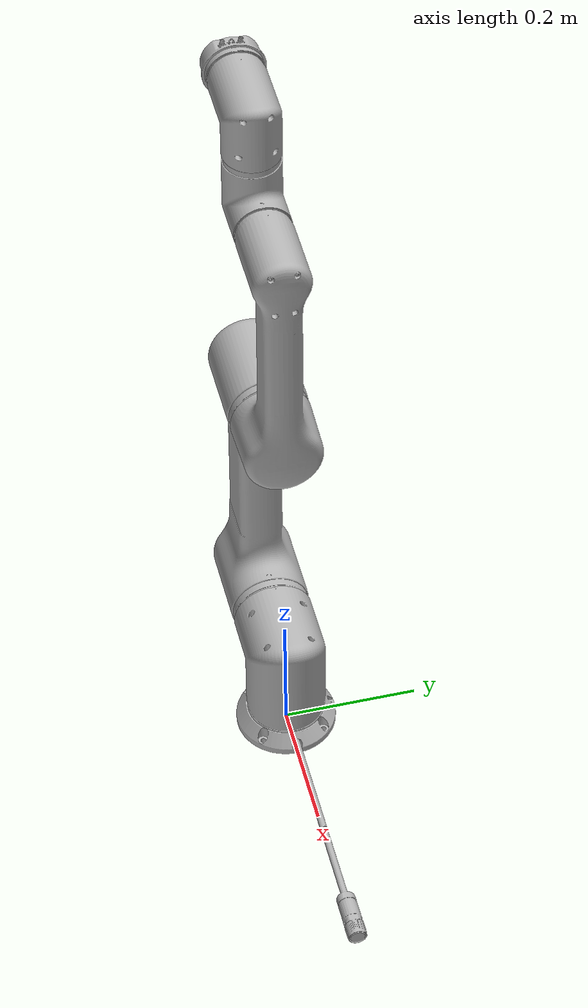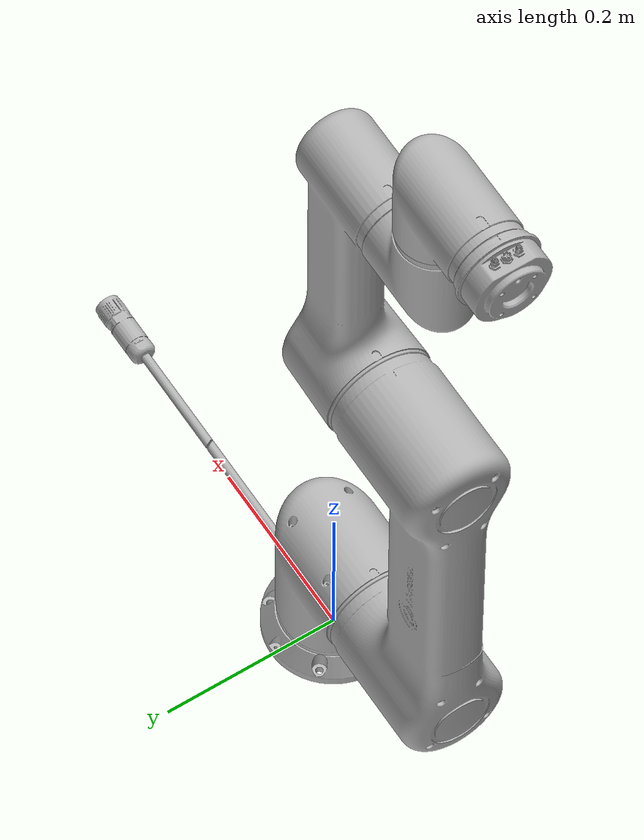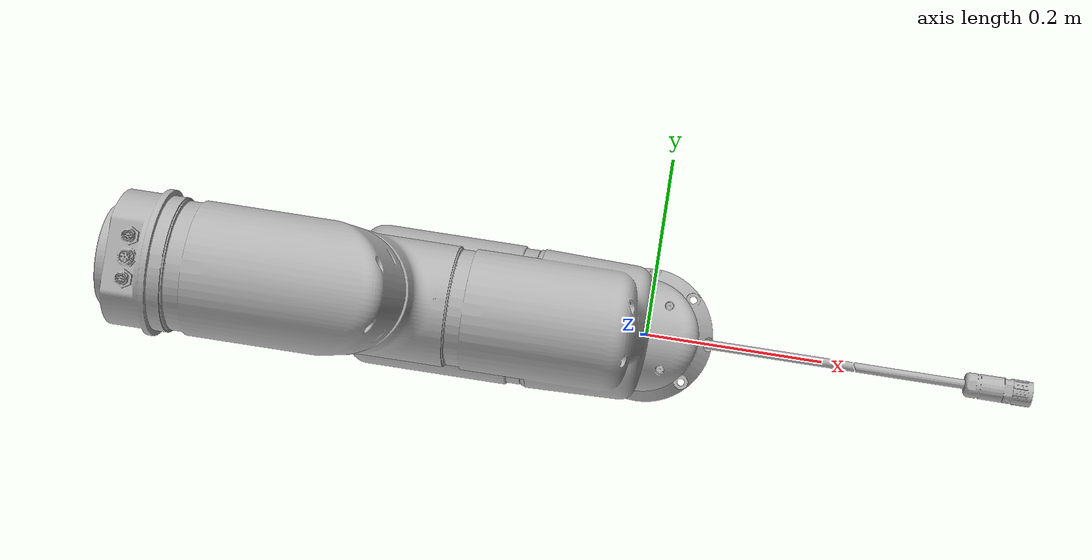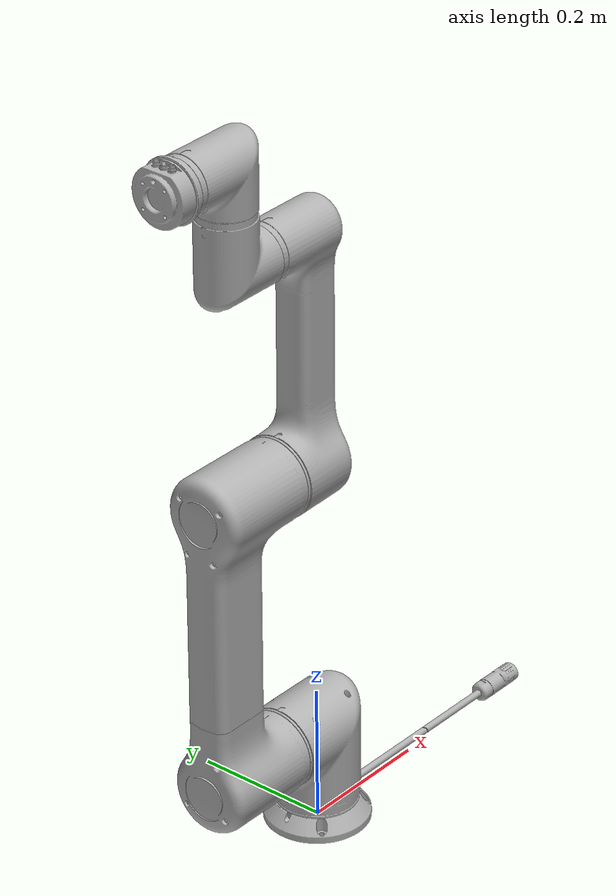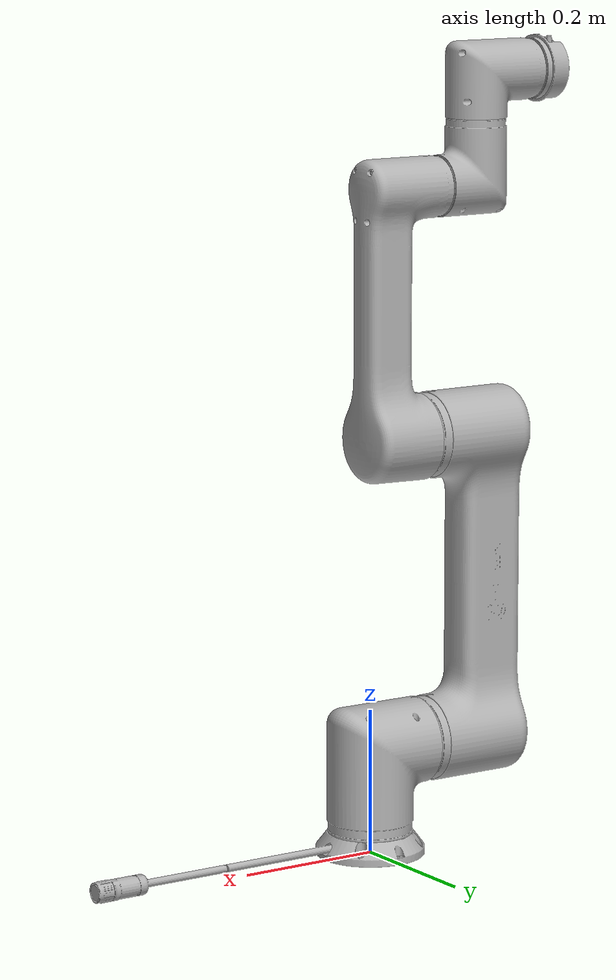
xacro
<?xml version="1.0" ?>
<robot name="hcr_robot" xmlns:xacro="http://www.ros.org/wiki/xacro">

<xacro:include filename="$(find hcr_robot_description)/urdf/materials.xacro" />
<xacro:include filename="$(find hcr_robot_description)/urdf/hcr_robot.trans" />
<xacro:include filename="$(find hcr_robot_description)/urdf/hcr_robot.gazebo" />
<link name="base_link">
  <inertial>
    <origin xyz="0.044693591972953806 -9.689819846991377e-05 0.013982771179495564" rpy="0 0 0"/>
    <mass value="4.071462983655495"/>
    <inertia ixx="0.004614" iyy="0.063084" izz="0.067151" ixy="-2e-05" iyz="0.0" ixz="-0.000189"/>
  </inertial>
  <visual>
    <origin xyz="0 0 0" rpy="0 0 0"/>
    <geometry>
      <mesh filename="package://hcr_robot_description/meshes/base_link.stl" scale="0.001 0.001 0.001"/>
    </geometry>
    <material name="silver"/>
  </visual>
  <collision>
    <origin xyz="0 0 0" rpy="0 0 0"/>
    <geometry>
      <mesh filename="package://hcr_robot_description/meshes/base_link.stl" scale="0.001 0.001 0.001"/>
    </geometry>
  </collision>
</link>

<link name="link1_1">
  <inertial>
    <origin xyz="-0.009232924655966162 5.611908895686318e-08 0.08981078121700108" rpy="0 0 0"/>
    <mass value="17.125748524580114"/>
    <inertia ixx="0.054601" iyy="0.061186" izz="0.036738" ixy="0.0" iyz="-0.0" ixz="0.004569"/>
  </inertial>
  <visual>
    <origin xyz="-0.0 0.0 -0.03" rpy="0 0 0"/>
    <geometry>
      <mesh filename="package://hcr_robot_description/meshes/link1_1.stl" scale="0.001 0.001 0.001"/>
    </geometry>
    <material name="silver"/>
  </visual>
  <collision>
    <origin xyz="-0.0 0.0 -0.03" rpy="0 0 0"/>
    <geometry>
      <mesh filename="package://hcr_robot_description/meshes/link1_1.stl" scale="0.001 0.001 0.001"/>
    </geometry>
  </collision>
</link>

<link name="link2_1">
  <inertial>
    <origin xyz="-0.08134423156498356 0.0004999972193747809 0.21200027982915884" rpy="0 0 0"/>
    <mass value="32.073698785630135"/>
    <inertia ixx="1.334728" iyy="1.368804" izz="0.0845" ixy="-5e-06" iyz="-0.003172" ixz="-0.002068"/>
  </inertial>
  <visual>
    <origin xyz="0.0785 0.0 -0.148778" rpy="0 0 0"/>
    <geometry>
      <mesh filename="package://hcr_robot_description/meshes/link2_1.stl" scale="0.001 0.001 0.001"/>
    </geometry>
    <material name="silver"/>
  </visual>
  <collision>
    <origin xyz="0.0785 0.0 -0.148778" rpy="0 0 0"/>
    <geometry>
      <mesh filename="package://hcr_robot_description/meshes/link2_1.stl" scale="0.001 0.001 0.001"/>
    </geometry>
  </collision>
</link>

<link name="link3_1">
  <inertial>
    <origin xyz="0.03733088153046067 -8.45436915776097e-06 0.32700293666580915" rpy="0 0 0"/>
    <mass value="6.636542484506931"/>
    <inertia ixx="0.008668" iyy="0.014027" izz="0.010649" ixy="-0.0" iyz="0.0" ixz="0.001661"/>
  </inertial>
  <visual>
    <origin xyz="0.077848 -0.001 -0.572778" rpy="0 0 0"/>
    <geometry>
      <mesh filename="package://hcr_robot_description/meshes/link3_1.stl" scale="0.001 0.001 0.001"/>
    </geometry>
    <material name="silver"/>
  </visual>
  <collision>
    <origin xyz="0.077848 -0.001 -0.572778" rpy="0 0 0"/>
    <geometry>
      <mesh filename="package://hcr_robot_description/meshes/link3_1.stl" scale="0.001 0.001 0.001"/>
    </geometry>
  </collision>
</link>

<link name="link4_1">
  <inertial>
    <origin xyz="-0.053462210233883714 -3.2261679182082545e-07 0.022076827880824546" rpy="0 0 0"/>
    <mass value="6.518501202798632"/>
    <inertia ixx="0.011005" iyy="0.012783" izz="0.007491" ixy="-0.0" iyz="0.0" ixz="0.001222"/>
  </inertial>
  <visual>
    <origin xyz="0.107864 -0.000992 -0.911345" rpy="0 0 0"/>
    <geometry>
      <mesh filename="package://hcr_robot_description/meshes/link4_1.stl" scale="0.001 0.001 0.001"/>
    </geometry>
    <material name="silver"/>
  </visual>
  <collision>
    <origin xyz="0.107864 -0.000992 -0.911345" rpy="0 0 0"/>
    <geometry>
      <mesh filename="package://hcr_robot_description/meshes/link4_1.stl" scale="0.001 0.001 0.001"/>
    </geometry>
  </collision>
</link>

<link name="link5_1">
  <inertial>
    <origin xyz="-0.022082116809040042 -5.860596366637823e-07 0.0534553107989999" rpy="0 0 0"/>
    <mass value="6.518501237017786"/>
    <inertia ixx="0.007541" iyy="0.012794" izz="0.010966" ixy="0.0" iyz="-0.0" ixz="0.001224"/>
  </inertial>
  <visual>
    <origin xyz="0.169864 -0.000992 -1.000941" rpy="0 0 0"/>
    <geometry>
      <mesh filename="package://hcr_robot_description/meshes/link5_1.stl" scale="0.001 0.001 0.001"/>
    </geometry>
    <material name="silver"/>
  </visual>
  <collision>
    <origin xyz="0.169864 -0.000992 -1.000941" rpy="0 0 0"/>
    <geometry>
      <mesh filename="package://hcr_robot_description/meshes/link5_1.stl" scale="0.001 0.001 0.001"/>
    </geometry>
  </collision>
</link>

<link name="link6_1">
  <inertial>
    <origin xyz="-0.019264152679962065 -4.5474100852818493e-07 -0.0005907014657897669" rpy="0 0 0"/>
    <mass value="1.6914762668461325"/>
    <inertia ixx="0.001473" iyy="0.00094" izz="0.000976" ixy="0.0" iyz="0.0" ixz="-8e-06"/>
  </inertial>
  <visual>
    <origin xyz="0.25946 -0.000992 -1.062941" rpy="0 0 0"/>
    <geometry>
      <mesh filename="package://hcr_robot_description/meshes/link6_1.stl" scale="0.001 0.001 0.001"/>
    </geometry>
    <material name="silver"/>
  </visual>
  <collision>
    <origin xyz="0.25946 -0.000992 -1.062941" rpy="0 0 0"/>
    <geometry>
      <mesh filename="package://hcr_robot_description/meshes/link6_1.stl" scale="0.001 0.001 0.001"/>
    </geometry>
  </collision>
</link>

<joint name="joint_1" type="revolute">
  <origin xyz="0.0 0.0 0.03" rpy="0 0 0"/>
  <parent link="base_link"/>
  <child link="link1_1"/>
  <axis xyz="0.0 -0.0 1.0"/>
  <limit upper="6.283185" lower="0.0" effort="100" velocity="100"/>
</joint>

<joint name="joint_2" type="revolute">
  <origin xyz="-0.0785 0.0 0.118778" rpy="0 0 0"/>
  <parent link="link1_1"/>
  <child link="link2_1"/>
  <axis xyz="-1.0 0.0 0.0"/>
  <limit upper="1.570796" lower="-1.570796" effort="100" velocity="100"/>
</joint>

<joint name="joint_3" type="revolute">
  <origin xyz="0.000652 0.001 0.424" rpy="0 0 0"/>
  <parent link="link2_1"/>
  <child link="link3_1"/>
  <axis xyz="1.0 0.0 0.0"/>
  <limit upper="2.268928" lower="-2.268928" effort="100" velocity="100"/>
</joint>

<joint name="joint_4" type="revolute">
  <origin xyz="-0.030016 -8e-06 0.338567" rpy="0 0 0"/>
  <parent link="link3_1"/>
  <child link="link4_1"/>
  <axis xyz="-1.0 0.0 -0.0"/>
  <limit upper="2.96706" lower="-2.96706" effort="100" velocity="100"/>
</joint>

<joint name="joint_5" type="revolute">
  <origin xyz="-0.062 0.0 0.089596" rpy="0 0 0"/>
  <parent link="link4_1"/>
  <child link="link5_1"/>
  <axis xyz="-0.0 -0.0 1.0"/>
  <limit upper="2.094395" lower="-2.094395" effort="100" velocity="100"/>
</joint>

<joint name="joint_6" type="revolute">
  <origin xyz="-0.089596 0.0 0.062" rpy="0 0 0"/>
  <parent link="link5_1"/>
  <child link="link6_1"/>
  <axis xyz="-1.0 -0.0 0.0"/>
  <limit upper="6.283185" lower="0.0" effort="100" velocity="100"/>
</joint>

</robot>

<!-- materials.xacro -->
<robot name="hcr_robot" xmlns:xacro="http://www.ros.org/wiki/xacro" >

<material name="silver">
  <color rgba="0.700 0.700 0.700 1.000"/>
</material>

</robot>

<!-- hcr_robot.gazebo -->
<robot name="hcr_robot" xmlns:xacro="http://www.ros.org/wiki/xacro" >

<xacro:property name="body_color" value="Gazebo/Silver" />

<gazebo>
  <plugin name="control" filename="libgazebo_ros_control.so"/>
</gazebo>
<gazebo reference="base_link">
  <material>${body_color}</material>
  <mu1>0.2</mu1>
  <mu2>0.2</mu2>
  <selfCollide>true</selfCollide>
  <gravity>true</gravity>
</gazebo>

<gazebo reference="link1_1">
  <material>${body_color}</material>
  <mu1>0.2</mu1>
  <mu2>0.2</mu2>
  <selfCollide>true</selfCollide>
</gazebo>

<gazebo reference="link2_1">
  <material>${body_color}</material>
  <mu1>0.2</mu1>
  <mu2>0.2</mu2>
  <selfCollide>true</selfCollide>
</gazebo>

<gazebo reference="link3_1">
  <material>${body_color}</material>
  <mu1>0.2</mu1>
  <mu2>0.2</mu2>
  <selfCollide>true</selfCollide>
</gazebo>

<gazebo reference="link4_1">
  <material>${body_color}</material>
  <mu1>0.2</mu1>
  <mu2>0.2</mu2>
  <selfCollide>true</selfCollide>
</gazebo>

<gazebo reference="link5_1">
  <material>${body_color}</material>
  <mu1>0.2</mu1>
  <mu2>0.2</mu2>
  <selfCollide>true</selfCollide>
</gazebo>

<gazebo reference="link6_1">
  <material>${body_color}</material>
  <mu1>0.2</mu1>
  <mu2>0.2</mu2>
  <selfCollide>true</selfCollide>
</gazebo>

</robot>
